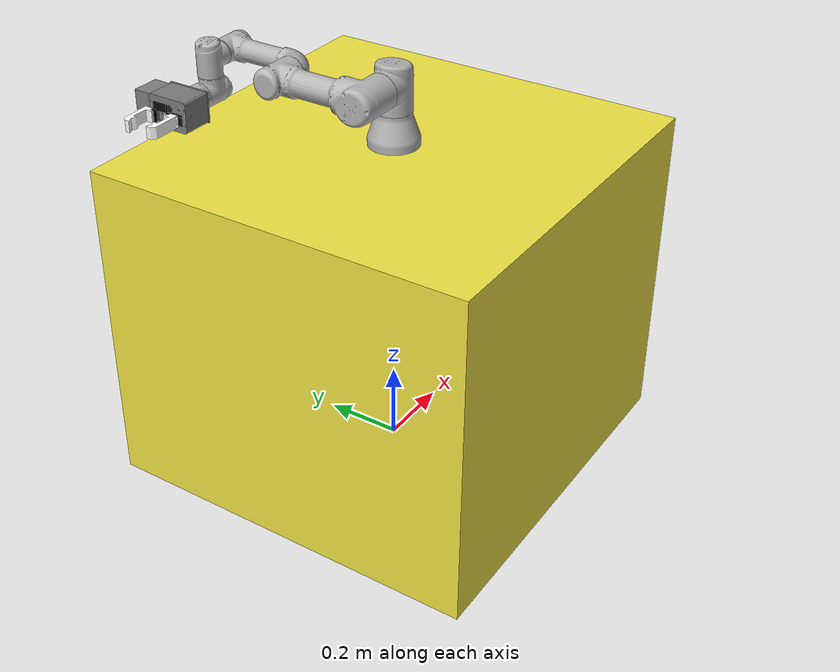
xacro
<?xml version="1.0"?>
<robot xmlns:xacro="http://www.ros.org/wiki/xacro"
  name="ur3_pg70">
<!-- schunk_pg70 -->
  <xacro:include filename="$(find manos_description)/urdf/grippers/schunk_pg70.urdf.xacro"/>

<!-- ur3 -->
  <xacro:arg name="transmission_hw_interface" default="hardware_interface/PositionJointInterface"/>

  <!-- common stuff -->
  <xacro:include filename="$(find ur_description)/urdf/common.gazebo.xacro" />

  <!-- ur3 -->
  <xacro:include filename="$(find ur_description)/urdf/ur3.urdf.xacro" />

  <!-- arm -->
  <xacro:arg name="kinematics_config" default="$(find ur_description)/config/ur3_default.yaml"/>
  <xacro:ur3_robot prefix="" joint_limited="true"
    shoulder_pan_lower_limit="${-pi}" shoulder_pan_upper_limit="${pi}"
    shoulder_lift_lower_limit="${-pi}" shoulder_lift_upper_limit="${pi}"
    elbow_joint_lower_limit="${-pi}" elbow_joint_upper_limit="${pi}"
    wrist_1_lower_limit="${-pi}" wrist_1_upper_limit="${pi}"
    wrist_2_lower_limit="${-pi}" wrist_2_upper_limit="${pi}"
    wrist_3_lower_limit="${-pi}" wrist_3_upper_limit="${pi}"
    transmission_hw_interface="$(arg transmission_hw_interface)"
    kinematics_file="${load_yaml('$(arg kinematics_config)')}"
  />

   <link name="world" />

  <link name="box_link">
    <visual>
      <geometry>
        <box size="1.0 1.0 0.86"/>
      </geometry>
    </visual>
    <inertial>
        <origin xyz="0 0 0" rpy="0 0 0"/>
        <mass value="100"/>
        <inertia ixx="1.0" ixy="0" ixz="0" iyy="1.0" iyz="0" izz="1.0" />
    </inertial>
    <collision>
      <geometry>
        <box size="1.0 1.0 0.86"/>
      </geometry>
    </collision>
  </link>

  <joint name="world_joint" type="fixed">
    <parent link="world" />
    <child link = "box_link" />
    <origin xyz="0.0 0.0 0.43" rpy="0.0 0.0 0.0" />
  </joint>

   <joint name="box_joint" type="fixed">
    <parent link="box_link"/>
    <child link="base_link"/>
    <origin xyz="0.0 0.0 0.43" rpy="0 0 1.57" />
 </joint>

  <link name="gripper_link">
    <visual>
      <geometry>
        <box size="0.005 0.113 0.08 "/>
      </geometry>
      <material name="silver">
        <color rgba="0.5 0.5 0.5 1" />
      </material>
    </visual>
    <inertial>
        <origin xyz="0 0 0" rpy="0 0 0"/>
        <mass value="0.001"/>
        <inertia ixx="0.0001" ixy="0" ixz="0" iyy="0.0001" iyz="0" izz="0.0001" />
    </inertial>
    <collision>
      <geometry>
        <box size="0.005 0.113 0.08 "/>
      </geometry>
    </collision>
  </link>

  <joint name="gripper_joint" type="fixed">
    <parent link="ee_link"/>
    <child link="gripper_link"/>
    <origin xyz="0.0 0.0 0.0" rpy="0.0 0.0 0.0" />
 </joint>

  <!-- GRIPPER -->
  <xacro:schunk_pg70 name="pg70" parent="gripper_link">
    <origin xyz="0.0095 0 0" rpy="${pi} -${pi/2} 0" />
  </xacro:schunk_pg70>

  <gazebo>
      <plugin name="gazebo_ros_control" filename="libgazebo_ros_control.so">
        <robotNamespace>/</robotNamespace>
      </plugin>
  </gazebo>

</robot>

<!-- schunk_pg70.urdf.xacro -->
<robot xmlns:xacro="http://www.ros.org/wiki/xacro">
  <xacro:include filename="$(find manos_description)/urdf/grippers/schunk_pg70.transmission.xacro" />
  <xacro:include filename="$(find manos_description)/urdf/grippers/schunk_pg70.gazebo.xacro" />
  <xacro:macro name="schunk_pg70" params="parent name *origin ">
  <xacro:property name="pi" value="3.14159265" />
    <joint name="${name}_base_joint" type="fixed" >
      <parent link="${parent}" />
      <child link="${name}_base_link" />
      <xacro:insert_block name="origin" />
    </joint>

    <xacro:schunk_pg70_transmission name="${name}"/>
    <xacro:schunk_pg70_gazebo name="${name}" />

    <material name="silver">
      <color rgba="0.5 0.5 0.5 1"/>
    </material>

    <material name="light_silver">
      <color rgba="0.7 0.7 0.7 1"/>
    </material>

    <material name="white">
      <color rgba="1 1 1 1"/>
    </material>

    <material name="black">
      <color rgba="0 0 0 1"/>
    </material>

<!--     PALM -->

    <link name="${name}_base_link">
      <visual>
        <geometry>
          <mesh filename="package://manos_description/meshes/schunk_pg70/pg70.dae" />
        </geometry>
      </visual>
      <collision>
        <geometry>
          <mesh filename="package://manos_description/meshes/schunk_pg70/pg70.dae" />
        </geometry>
      </collision>
      <inertial>
          <origin xyz="0.000019 -0.000347 0.028892"/>
         <mass value="2.0"/>
         <inertia ixx="0.000002" ixy="0.0" ixz="0.0" iyy="0.000001" iyz="0.0" izz="0.000002"/>
      </inertial>
    </link>

  <link name="${name}_center_link"/>

  <joint name="${name}_center_joint" type="fixed">
    <parent link="${name}_base_link"/>
    <child link="${name}_center_link"/>
    <origin xyz="0 0 0.04903" rpy="0.0 0.0 0.0" />
 </joint>

<!-- LEFT FINGER BASE -->

    <joint name="${name}_finger1_joint" type="prismatic" >
      <parent link="${name}_base_link" />
      <child link="${name}_finger1_link" />
      <limit effort="100" lower="0.0015" upper="0.04" velocity="2.0"/>
      <origin xyz="0 0.0015 0.095" rpy="0 0 0"/>
      <axis xyz="0 1 0" />
    </joint>

    <link name="${name}_finger1_link">
      <visual>
        <geometry>
          <box size="0.03 0.01 0.01"/>
        </geometry>
        <material name="black"/>
      </visual>
      <collision>
        <geometry>
          <box size="0.03 0.01 0.01"/>
        </geometry>
      </collision>
      <inertial>
          <origin xyz="0.0 0.0 0.0"/>
         <mass value="0.2"/>
         <inertia ixx="1.0" ixy="0.0" ixz="0.0" iyy="1.0" iyz="0.0" izz="1.0"/>
      </inertial>
    </link>

<!-- LEFT FINGERTIP -->

    <joint name="${name}_fingertip_left_joint" type="fixed" >
      <parent link="${name}_finger1_link" />
      <child link="${name}_fingertip_left_link" />
      <origin xyz="0.015 -0.001 0.045" rpy="${pi/2} 0 -${pi/2}"/>
    </joint>

    <link name="${name}_fingertip_left_link">
      <visual>
         <geometry>
          <mesh filename="package://manos_description/meshes/schunk_pg70/finger.stl" />
        </geometry>
        <material name="white"/>
      </visual>
      <collision>
         <geometry>
          <mesh filename="package://manos_description/meshes/schunk_pg70/finger.stl" />
        </geometry>
      </collision>
    </link>

<!-- RIGHT FINGER BASE -->

    <joint name="${name}_finger2_joint" type="prismatic" >
      <parent link="${name}_base_link" />
      <child link="${name}_finger2_link" />
      <limit effort="100" lower="0.0015" upper="0.04" velocity="2.0"/>
      <origin xyz="0 -0.0015 0.095" rpy="-0 0 0"/>
      <axis xyz="0 -1 0" />
    </joint>

    <link name="${name}_finger2_link">
      <visual>
        <geometry>
          <box size="0.03 0.01 0.01"/>
        </geometry>
      <material name="black"/>
      </visual>
      <collision>
        <geometry>
          <box size="0.03 0.01 0.01"/>
        </geometry>
      </collision>
      <inertial>
          <origin xyz="0.0 0.0 0.0"/>
         <mass value="0.2"/>
         <inertia ixx="1.0" ixy="0.0" ixz="0.0" iyy="1.0" iyz="0.0" izz="1.0"/>
      </inertial>
    </link>

<!-- RIGHT FINGERTIP -->

    <joint name="${name}_fingertip_right_joint" type="fixed" >
      <parent link="${name}_finger2_link" />
      <child link="${name}_fingertip_right_link" />
     <origin xyz="-0.015 0.001 0.045" rpy="${pi/2} 0 ${pi/2}"/>
   </joint>

    <link name="${name}_fingertip_right_link">
      <visual>
         <geometry>
          <mesh filename="package://manos_description/meshes/schunk_pg70/finger.stl" />
        </geometry>
      <material name="white" />
      </visual>
      <collision>
         <geometry>
          <mesh filename="package://manos_description/meshes/schunk_pg70/finger.stl" />
        </geometry>
     </collision>
    </link>

         <link name="gripper_power_cable">
    <visual>
      <geometry>
        <cylinder length="0.035" radius="0.012"/>
      </geometry>
      <material name="light_silver"/>
    </visual>
    <collision>
      <geometry>
        <cylinder length="0.035" radius="0.012"/>
      </geometry>
    </collision>
 </link>

  <link name="gripper_power_box">
    <visual>
      <geometry>
        <box size="0.047 0.072 0.072"/>
      </geometry>
      <material name="silver"/>
    </visual>
    <collision>
      <geometry>
       <box size="0.047 0.072 0.072"/>
      </geometry>
    </collision>
  </link>

  <joint name="gripper_power_joint" type="fixed">
    <parent link="${name}_base_link"/>
    <child link="gripper_power_box"/>
    <origin xyz="0.0 -0.08 0.03" rpy="0.0 0.0 ${pi/2}" />
 </joint>

 <joint name="gripper_power_cable_joint" type="fixed">
    <parent link="gripper_power_box"/>
    <child link="gripper_power_cable"/>
    <origin xyz="-0.01 -0.042 -0.011" rpy="${pi/2} 0.0 0.0" />
 </joint>

  </xacro:macro>
</robot>

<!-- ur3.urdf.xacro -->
<robot xmlns:xacro="http://ros.org/wiki/xacro">

<!--
  Author: Felix Messmer
-->

  <xacro:include filename="$(find ur_description)/urdf/ur.transmission.xacro" />
  <xacro:include filename="$(find ur_description)/urdf/ur.gazebo.xacro" />

  <xacro:property name="pi" value="3.14159265" />

  <!-- Inertia parameters -->
  <xacro:property name="base_mass" value="2.0" />  <!-- This mass might be incorrect -->
  <xacro:property name="shoulder_mass" value="2.0" />
  <xacro:property name="upper_arm_mass" value="3.42" />
  <xacro:property name="forearm_mass" value="1.26" />
  <xacro:property name="wrist_1_mass" value="0.8" />
  <xacro:property name="wrist_2_mass" value="0.8" />
  <xacro:property name="wrist_3_mass" value="0.35" />

  <xacro:property name="shoulder_cog" value="0.0 -0.02 0.0" />
  <xacro:property name="upper_arm_cog" value="0.13 0.0 0.1157" />
  <xacro:property name="forearm_cog" value="0.05 0.0 0.0238" />
  <xacro:property name="wrist_1_cog" value="0.0 0.0 0.01" />
  <xacro:property name="wrist_2_cog" value="0.0 0.0 0.01" />
  <xacro:property name="wrist_3_cog" value="0.0 0.0 -0.02" />

  <!-- Kinematic model -->
  <!-- Properties from urcontrol.conf -->
  <xacro:property name="ur3_d1" value="0.1519" />
  <xacro:property name="ur3_a2" value="-0.24365" />
  <xacro:property name="ur3_a3" value="-0.21325" />
  <xacro:property name="ur3_d4" value="0.11235" />
  <xacro:property name="ur3_d5" value="0.08535" />
  <xacro:property name="ur3_d6" value="0.0819" />

  <!-- Arbitrary offsets for shoulder/elbow joints -->
  <xacro:property name="shoulder_offset" value="0.1198" />  <!-- measured from model -->
  <xacro:property name="elbow_offset" value="-0.0925" /> <!-- measured from model -->

  <!-- link lengths used in model -->
  <xacro:property name="shoulder_height" value="${ur3_d1}" />
  <xacro:property name="upper_arm_length" value="${-ur3_a2}" />
  <xacro:property name="forearm_length" value="${-ur3_a3}" />
  <xacro:property name="wrist_1_length" value="${ur3_d4 - elbow_offset - shoulder_offset}" />
  <xacro:property name="wrist_2_length" value="${ur3_d5}" />
  <xacro:property name="wrist_3_length" value="${ur3_d6}" />

  <xacro:macro name="cylinder_inertial" params="radius length mass *origin">
    <inertial>
      <mass value="${mass}" />
      <xacro:insert_block name="origin" />
      <inertia ixx="${0.0833333 * mass * (3 * radius * radius + length * length)}" ixy="0.0" ixz="0.0"
        iyy="${0.0833333 * mass * (3 * radius * radius + length * length)}" iyz="0.0"
        izz="${0.5 * mass * radius * radius}" />
    </inertial>
  </xacro:macro>

  <xacro:macro name="ur3_robot" params="prefix joint_limited">

    <link name="${prefix}base_link" >
      <visual>
        <geometry>
          <mesh filename="package://ur_description/meshes/ur3/visual/base.dae"/>
        </geometry>
        <material name="LightGrey">
          <color rgba="0.7 0.7 0.7 1.0"/>
        </material>
      </visual>
      <collision>
        <geometry>
          <mesh filename="package://ur_description/meshes/ur3/collision/base.stl"/>
        </geometry>
      </collision>
      <xacro:cylinder_inertial radius="0.075" length="0.038" mass="${base_mass}">
        <origin xyz="0.0 0.0 0.0" rpy="0 0 0" />
      </xacro:cylinder_inertial>
    </link>

    <joint name="${prefix}shoulder_pan_joint" type="revolute">
      <parent link="${prefix}base_link" />
      <child link = "${prefix}shoulder_link" />
      <origin xyz="0.0 0.0 ${shoulder_height}" rpy="0.0 0.0 0.0" />
      <axis xyz="0 0 1" />
      <xacro:unless value="${joint_limited}">
        <limit lower="${-2.0 * pi}" upper="${2.0 * pi}" effort="330.0" velocity="2.16"/>
      </xacro:unless>
      <xacro:if value="${joint_limited}">
        <limit lower="${-pi}" upper="${pi}" effort="330.0" velocity="2.16"/>
      </xacro:if>
      <dynamics damping="0.0" friction="0.0"/>
    </joint>

    <link name="${prefix}shoulder_link">
      <visual>
        <geometry>
          <mesh filename="package://ur_description/meshes/ur3/visual/shoulder.dae"/>
        </geometry>
        <material name="LightGrey">
          <color rgba="0.7 0.7 0.7 1.0"/>
        </material>
      </visual>
      <collision>
        <geometry>
          <mesh filename="package://ur_description/meshes/ur3/collision/shoulder.stl"/>
        </geometry>
      </collision>
      <xacro:cylinder_inertial radius="0.075" length="0.178" mass="${shoulder_mass}">
        <origin xyz="0.0 0.0 0.0" rpy="0 0 0" />
      </xacro:cylinder_inertial>
    </link>

    <joint name="${prefix}shoulder_lift_joint" type="revolute">
      <parent link="${prefix}shoulder_link" />
      <child link = "${prefix}upper_arm_link" />
      <origin xyz="0.0 ${shoulder_offset} 0.0" rpy="0.0 ${pi / 2.0} 0.0" />
      <axis xyz="0 1 0" />
      <xacro:unless value="${joint_limited}">
        <limit lower="${-2.0 * pi}" upper="${2.0 * pi}" effort="330.0" velocity="2.16"/>
      </xacro:unless>
      <xacro:if value="${joint_limited}">
        <limit lower="${-pi}" upper="${pi}" effort="330.0" velocity="2.16"/>
      </xacro:if>
      <dynamics damping="0.0" friction="0.0"/>
    </joint>

    <link name="${prefix}upper_arm_link">
      <visual>
        <geometry>
          <mesh filename="package://ur_description/meshes/ur3/visual/upperarm.dae"/>
        </geometry>
        <material name="LightGrey">
          <color rgba="0.7 0.7 0.7 1.0"/>
        </material>
      </visual>
      <collision>
        <geometry>
          <mesh filename="package://ur_description/meshes/ur3/collision/upperarm.stl"/>
        </geometry>
      </collision>
      <xacro:cylinder_inertial radius="0.075" length="${-ur3_a2}" mass="${upper_arm_mass}">
        <origin xyz="0.0 0.0 ${-ur3_a2/2.0}" rpy="0 0 0" />
      </xacro:cylinder_inertial>
    </link>

    <joint name="${prefix}elbow_joint" type="revolute">
      <parent link="${prefix}upper_arm_link" />
      <child link = "${prefix}forearm_link" />
      <origin xyz="0.0 ${elbow_offset} ${upper_arm_length}" rpy="0.0 0.0 0.0" />
      <axis xyz="0 1 0" />
      <xacro:unless value="${joint_limited}">
        <limit lower="${-2.0 * pi}" upper="${2.0 * pi}" effort="150.0" velocity="3.15"/>
      </xacro:unless>
      <xacro:if value="${joint_limited}">
        <limit lower="${-pi}" upper="${pi}" effort="150.0" velocity="3.15"/>
      </xacro:if>
      <dynamics damping="0.0" friction="0.0"/>
    </joint>

    <link name="${prefix}forearm_link">
      <visual>
         <geometry>
          <mesh filename="package://ur_description/meshes/ur3/visual/forearm.dae"/>
        </geometry>
        <material name="LightGrey">
          <color rgba="0.7 0.7 0.7 1.0"/>
        </material>
      </visual>
      <collision>
        <geometry>
          <mesh filename="package://ur_description/meshes/ur3/collision/forearm.stl"/>
        </geometry>
      </collision>
      <xacro:cylinder_inertial radius="0.075" length="${-ur3_a3}" mass="${forearm_mass}">
        <origin xyz="0.0 0.0 ${-ur3_a3/2.0}" rpy="0 0 0" />
      </xacro:cylinder_inertial>
    </link>

    <joint name="${prefix}wrist_1_joint" type="revolute">
      <parent link="${prefix}forearm_link" />
      <child link = "${prefix}wrist_1_link" />
      <origin xyz="0.0 0.0 ${forearm_length}" rpy="0.0 ${pi / 2.0} 0.0" />
      <axis xyz="0 1 0" />
      <xacro:unless value="${joint_limited}">
        <limit lower="${-2.0 * pi}" upper="${2.0 * pi}" effort="54.0" velocity="3.2"/>
      </xacro:unless>
      <xacro:if value="${joint_limited}">
        <limit lower="${-pi}" upper="${pi}" effort="54.0" velocity="3.2"/>
      </xacro:if>
      <dynamics damping="0.0" friction="0.0"/>
    </joint>

    <link name="${prefix}wrist_1_link">
      <visual>
        <geometry>
          <mesh filename="package://ur_description/meshes/ur3/visual/wrist1.dae"/>
        </geometry>
        <material name="LightGrey">
          <color rgba="0.7 0.7 0.7 1.0"/>
        </material>
      </visual>
      <collision>
        <geometry>
          <mesh filename="package://ur_description/meshes/ur3/collision/wrist1.stl"/>
        </geometry>
      </collision>
      <xacro:cylinder_inertial radius="0.075" length="0.12" mass="${wrist_1_mass}">
        <origin xyz="0.0 0.0 0.0" rpy="0 0 0" />
      </xacro:cylinder_inertial>
    </link>

    <joint name="${prefix}wrist_2_joint" type="revolute">
      <parent link="${prefix}wrist_1_link" />
      <child link = "${prefix}wrist_2_link" />
      <origin xyz="0.0 ${wrist_1_length} 0.0" rpy="0.0 0.0 0.0" />
      <axis xyz="0 0 1" />
      <xacro:unless value="${joint_limited}">
        <limit lower="${-2.0 * pi}" upper="${2.0 * pi}" effort="54.0" velocity="3.2"/>
      </xacro:unless>
      <xacro:if value="${joint_limited}">
        <limit lower="${-pi}" upper="${pi}" effort="54.0" velocity="3.2"/>
      </xacro:if>
      <dynamics damping="0.0" friction="0.0"/>
    </joint>

    <link name="${prefix}wrist_2_link">
      <visual>
        <geometry>
          <mesh filename="package://ur_description/meshes/ur3/visual/wrist2.dae"/>
        </geometry>
        <material name="LightGrey">
          <color rgba="0.7 0.7 0.7 1.0"/>
        </material>
      </visual>
      <collision>
        <geometry>
          <mesh filename="package://ur_description/meshes/ur3/collision/wrist2.stl"/>
        </geometry>
      </collision>
      <xacro:cylinder_inertial radius="0.075" length="0.12" mass="${wrist_2_mass}">
        <origin xyz="0.0 0.0 0.0" rpy="0 0 0" />
      </xacro:cylinder_inertial>
    </link>

    <joint name="${prefix}wrist_3_joint" type="revolute">
      <parent link="${prefix}wrist_2_link" />
      <child link = "${prefix}wrist_3_link" />
      <origin xyz="0.0 0.0 ${wrist_2_length}" rpy="0.0 0.0 0.0" />
      <axis xyz="0 1 0" />
      <xacro:unless value="${joint_limited}">
        <limit lower="${-2.0 * pi}" upper="${2.0 * pi}" effort="54.0" velocity="3.2"/>
      </xacro:unless>
      <xacro:if value="${joint_limited}">
        <limit lower="${-pi}" upper="${pi}" effort="54.0" velocity="3.2"/>
      </xacro:if>
      <dynamics damping="0.0" friction="0.0"/>
    </joint>

    <link name="${prefix}wrist_3_link">
      <visual>
        <geometry>
          <mesh filename="package://ur_description/meshes/ur3/visual/wrist3.dae"/>
        </geometry>
        <material name="LightGrey">
          <color rgba="0.7 0.7 0.7 1.0"/>
        </material>
      </visual>
      <collision>
        <geometry>
          <mesh filename="package://ur_description/meshes/ur3/collision/wrist3.stl"/>
        </geometry>
      </collision>
      <xacro:cylinder_inertial radius="0.075" length="0.12" mass="${wrist_3_mass}">
        <origin xyz="0.0 0.0 0.0" rpy="0 0 0" />
      </xacro:cylinder_inertial>
    </link>

    <joint name="${prefix}ee_fixed_joint" type="fixed">
      <parent link="${prefix}wrist_3_link" />
      <child link = "${prefix}ee_link" />
      <origin xyz="0.0 ${wrist_3_length} 0.0" rpy="0.0 0.0 ${pi/2.0}" />
    </joint>

    <link name="${prefix}ee_link">
      <collision>
        <geometry>
          <box size="0.01 0.01 0.01"/>
        </geometry>
        <origin rpy="0 0 0" xyz="-0.01 0 0"/>
      </collision>
    </link>

    <xacro:ur_arm_transmission prefix="${prefix}" />
    <xacro:ur_arm_gazebo prefix="${prefix}" />

    <!-- ROS base_link to UR 'Base' Coordinates transform -->
    <link name="${prefix}base"/>
    <joint name="${prefix}base_link-base_fixed_joint" type="fixed">
      <!-- NOTE: this rotation is only needed as long as base_link itself is
                 not corrected wrt the real robot (ie: rotated over 180
                 degrees)
      -->
      <origin xyz="0 0 0" rpy="0 0 ${-pi}"/>
      <parent link="${prefix}base_link"/>
      <child link="${prefix}base"/>
    </joint>

    <!-- Frame coincident with all-zeros TCP on UR controller -->
    <link name="${prefix}tool0"/>
    <joint name="${prefix}wrist_3_link-tool0_fixed_joint" type="fixed">
      <origin xyz="0 ${wrist_3_length} 0" rpy="${pi/-2.0} 0 0"/>
      <parent link="${prefix}wrist_3_link"/>
      <child link="${prefix}tool0"/>
    </joint>

  </xacro:macro>
</robot>
